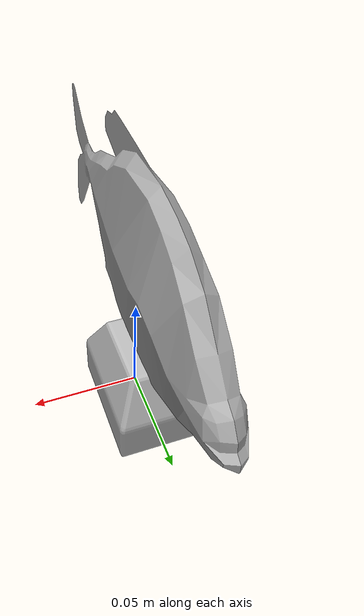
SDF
<?xml version='1.0'?>
<sdf version='1.4'>
  <model name='s__1857'>
    <pose>0 0 0 0 0 0</pose>
    <static>true</static>
    <link name='link'>
      <collision name='collision'>
        <pose>0 0 0 0 0 0</pose>
        <geometry>
          <box>
            <size>0.04 0.190523 2</size>
          </box>
        </geometry>
      </collision>
      <visual name='visual'>
        <pose>0 0 0 0 0 0</pose>
        <geometry>
          <mesh><uri>model://s__1857/s__1857.dae</uri></mesh>
        </geometry>
      </visual>
    </link>
  </model>
</sdf>
